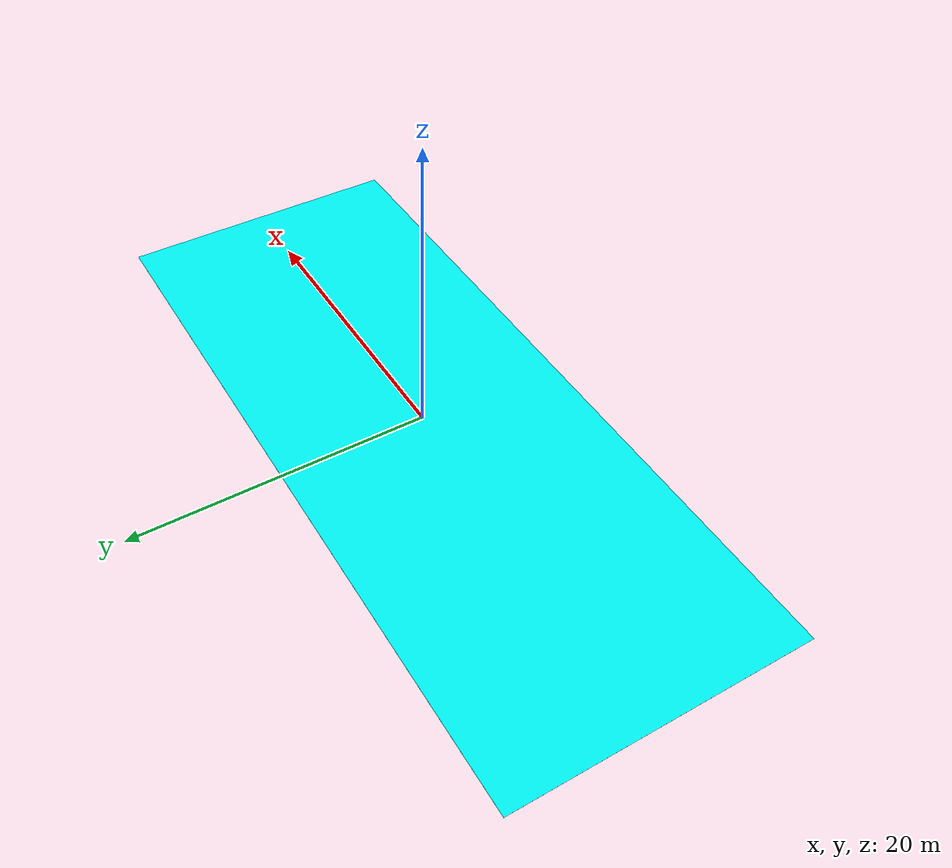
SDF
<?xml version="1.0"?>
<sdf version="1.6">
  <model name="Sol_v1">
    <static>true</static>
    <link name="Sol">
      <inertial>
        <mass>1</mass>
        <inertia>
          <ixx>1</ixx>
          <ixy>0</ixy>
          <ixz>0</ixz>
          <iyy>1</iyy>
          <iyz>0</iyz>
          <izz>1</izz>
        </inertia>
      </inertial>

      <collision name="collision">
        <geometry>
          <box>
            <size>50 20 0.01</size>
          </box>
        </geometry>
      </collision>

      <visual name="visual">
        <geometry>
            <box>
                <size>50 20 0.01</size>
            </box>
        </geometry>
        <material>
            <ambient>0 1 1 1</ambient>
            <diffuse>0 1 1 1</diffuse>
            <specular>0 1 1 1</specular>
        </material>
      </visual>
    </link>
  </model>
</sdf>
